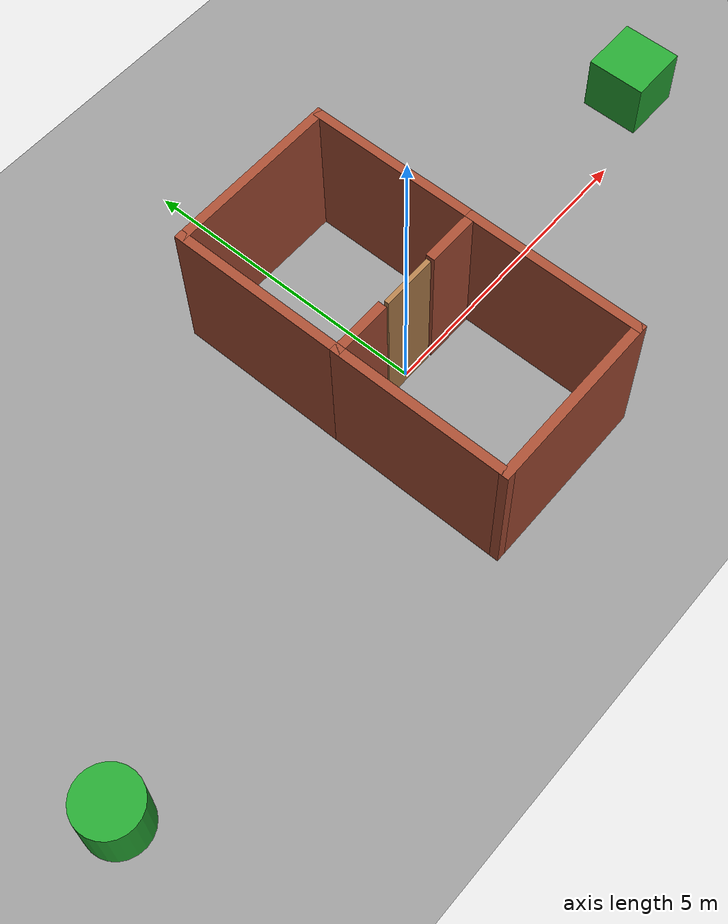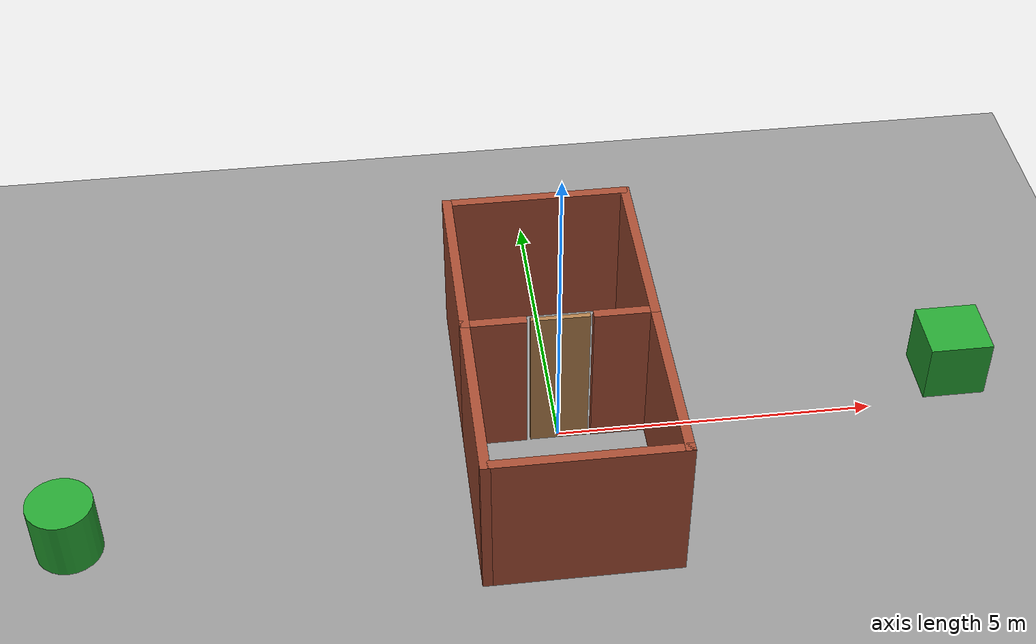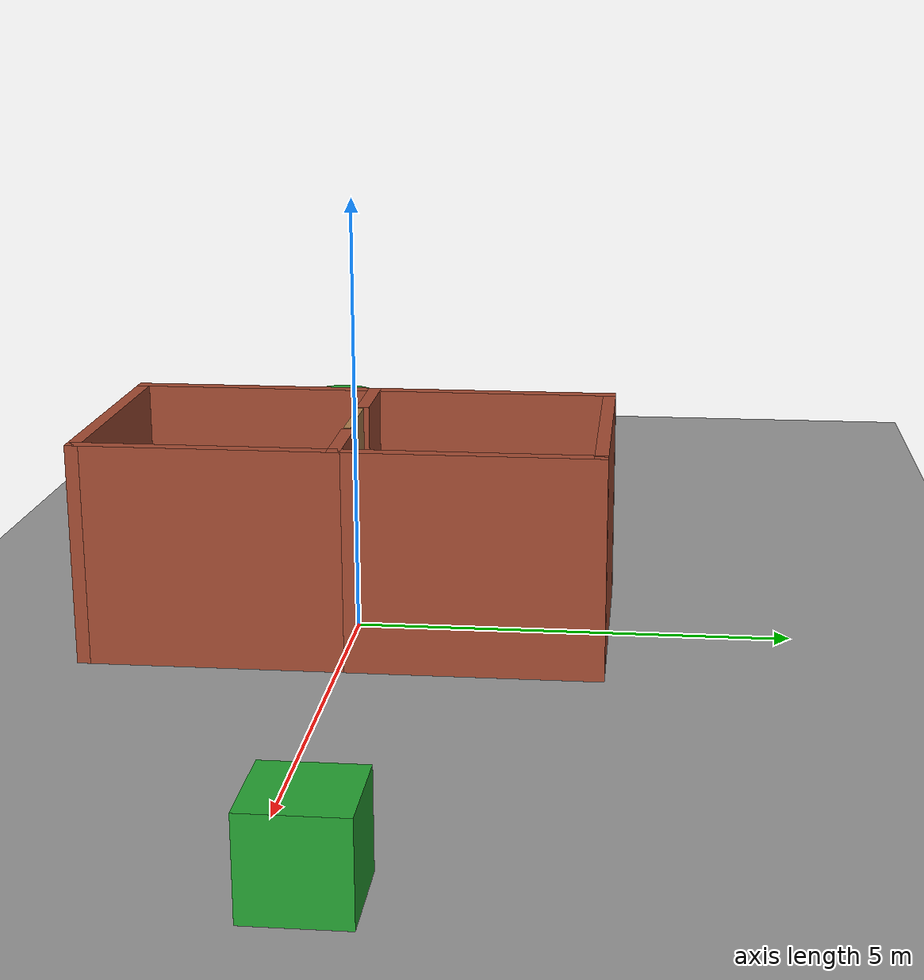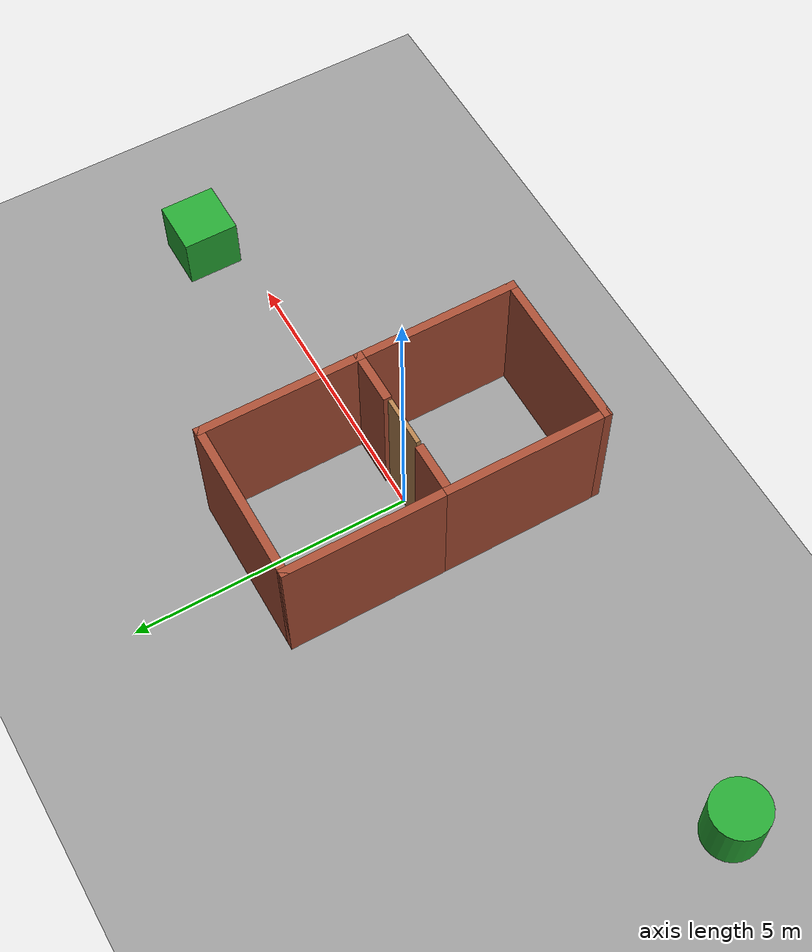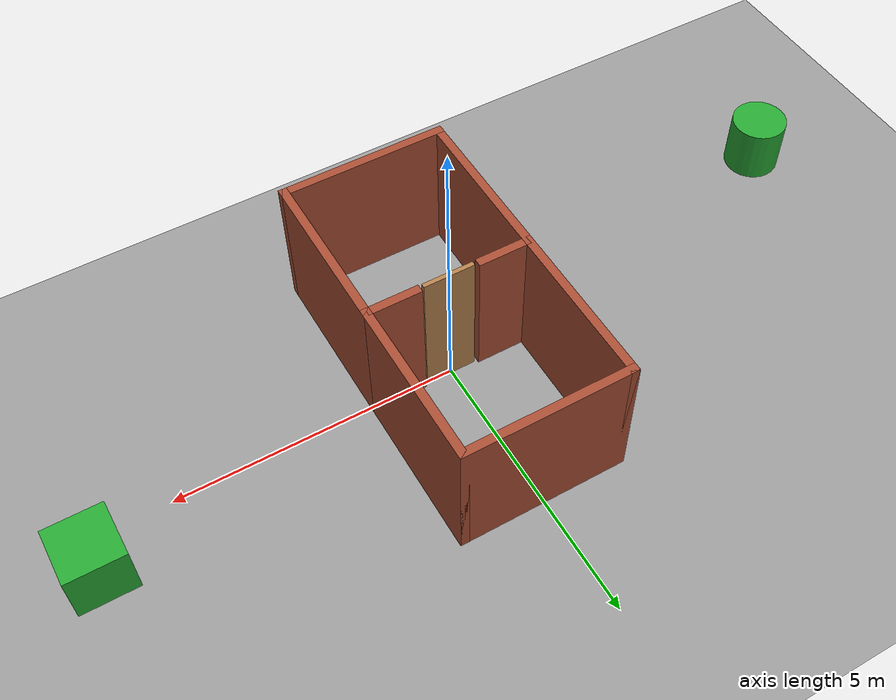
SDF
<sdf version='1.4'>
  <world name='default'>
    <physics type='ode'>
      <max_step_size>0.001</max_step_size>
      <real_time_factor>1</real_time_factor>
      <real_time_update_rate>1000</real_time_update_rate>
      <gravity>0 0 -9.8</gravity>
    </physics>
    <scene>
      <ambient>0.4 0.4 0.4 1</ambient>
      <background>0.7 0.7 0.7 1</background>
      <shadows>1</shadows>
    </scene>
    <spherical_coordinates>
      <surface_model>EARTH_WGS84</surface_model>
      <latitude_deg>0</latitude_deg>
      <longitude_deg>0</longitude_deg>
      <elevation>0</elevation>
      <heading_deg>0</heading_deg>
    </spherical_coordinates>
    <light name='sun' type='directional'>
      <cast_shadows>1</cast_shadows>
      <pose>0 0 10 0 -0 0</pose>
      <diffuse>0.8 0.8 0.8 1</diffuse>
      <specular>0.2 0.2 0.2 1</specular>
      <attenuation>
        <range>1000</range>
        <constant>0.9</constant>
        <linear>0.01</linear>
        <quadratic>0.001</quadratic>
      </attenuation>
      <direction>-0.5 0.1 -0.9</direction>
    </light>
    <model name='rooms'>
      <model name='ground_plane'>
        <static>1</static>
        <link name='link'>
          <collision name='collision'>
            <geometry>
              <plane>
                <normal>0 0 1</normal>
                <size>100 100</size>
              </plane>
            </geometry>
            <surface>
              <friction>
                <ode>
                  <mu>100</mu>
                  <mu2>50</mu2>
                </ode>
              </friction>
              <bounce/>
              <contact>
                <ode/>
              </contact>
            </surface>
            <max_contacts>10</max_contacts>
          </collision>
          <visual name='visual'>
            <cast_shadows>0</cast_shadows>
            <geometry>
              <plane>
                <normal>0 0 1</normal>
                <size>100 100</size>
              </plane>
            </geometry>
            <material>
              <script>
                <uri>file://media/materials/scripts/gazebo.material</uri>
                <name>Gazebo/Grey</name>
              </script>
            </material>
          </visual>
          <velocity_decay>
            <linear>0</linear>
            <angular>0</angular>
          </velocity_decay>
          <self_collide>0</self_collide>
          <kinematic>0</kinematic>
          <gravity>1</gravity>
        </link>
      </model>
      <model name='door'>
        <static>0</static>
        <link name='link'>
          <inertial>
            <mass>1</mass>
            <pose frame=''>0 0 0 0 -0 0</pose>
          </inertial>
          <pose frame=''>0.002741 -0.017964 1.2465 0 -0 0</pose>
          <self_collide>0</self_collide>
          <enable_wind>0</enable_wind>
          <kinematic>0</kinematic>
          <visual name='visual'>
            <pose frame=''>0 0 0 0 -0 0</pose>
            <geometry>
              <box>
                <size>0.9 0.078144 2.51204</size>
              </box>
            </geometry>
            <material>
              <lighting>1</lighting>
              <script>
                <uri>file://media/materials/scripts/gazebo.material</uri>
                <name>Gazebo/WoodFloor</name>
              </script>
              <shader type='pixel'/>
              <emissive>0 0 0 1</emissive>
            </material>
            <transparency>0</transparency>
            <cast_shadows>1</cast_shadows>
          </visual>
          <collision name='collision'>
            <laser_retro>0</laser_retro>
            <max_contacts>10</max_contacts>
            <pose frame=''>0 0 0 0 -0 0</pose>
            <geometry>
              <box>
                <size>0.9 0.078144 2.51204</size>
              </box>
            </geometry>
            <surface>
              <friction>
                <ode>
                  <mu>0.2</mu>
                  <mu2>0.2</mu2>
                  <fdir1>0 0 0</fdir1>
                  <slip1>0</slip1>
                  <slip2>0</slip2>
                </ode>
                <torsional>
                  <coefficient>1</coefficient>
                  <patch_radius>0</patch_radius>
                  <surface_radius>0</surface_radius>
                  <use_patch_radius>1</use_patch_radius>
                  <ode>
                    <slip>0</slip>
                  </ode>
                </torsional>
              </friction>
              <bounce>
                <restitution_coefficient>0</restitution_coefficient>
                <threshold>1e+06</threshold>
              </bounce>
              <contact>
                <collide_without_contact>0</collide_without_contact>
                <collide_without_contact_bitmask>1</collide_without_contact_bitmask>
                <collide_bitmask>1</collide_bitmask>
                <ode>
                  <soft_cfm>0</soft_cfm>
                  <soft_erp>0.2</soft_erp>
                  <kp>1e+13</kp>
                  <kd>1</kd>
                  <max_vel>0.01</max_vel>
                  <min_depth>0</min_depth>
                </ode>
                <bullet>
                  <split_impulse>1</split_impulse>
                  <split_impulse_penetration_threshold>-0.01</split_impulse_penetration_threshold>
                  <soft_cfm>0</soft_cfm>
                  <soft_erp>0.2</soft_erp>
                  <kp>1e+13</kp>
                  <kd>1</kd>
                </bullet>
              </contact>
            </surface>
          </collision>
        </link>
        <plugin name="model_pose_publisher_plugin" filename="libmodel_pose_publisher_plugin.so"/>
      </model>
      <model name='rooms_without_door'>
        <static>1</static>
        <link name='Wall_0'>
          <pose frame=''>-1.425 1.425 -0 0 -0 1.5708</pose>
          <inertial>
            <mass>2250</mass>
            <pose frame=''>0 0 0 0 -0 0</pose>
            <inertia>
              <ixx>1176.09</ixx>
              <ixy>0</ixy>
              <ixz>0</ixz>
              <iyy>2859.38</iyy>
              <iyz>0</iyz>
              <izz>1691.72</izz>
            </inertia>
          </inertial>
          <self_collide>0</self_collide>
          <enable_wind>0</enable_wind>
          <kinematic>0</kinematic>
          <gravity>1</gravity>
          <visual name='Wall_0_Visual'>
            <pose frame=''>0 0 1.25 0 -0 0</pose>
            <geometry>
              <box>
                <size>3 0.15 2.5</size>
              </box>
            </geometry>
            <material>
              <script>
                <uri>file://media/materials/scripts/gazebo.material</uri>
                <name>Gazebo/Bricks</name>
              </script>
              <ambient>1 1 1 1</ambient>
              <shader type='pixel'>
                <normal_map>__default__</normal_map>
              </shader>
              <emissive>0 0 0 1</emissive>
            </material>
            <meta>
              <layer>0</layer>
            </meta>
            <transparency>0</transparency>
            <cast_shadows>1</cast_shadows>
          </visual>
          <collision name='Wall_0_Collision'>
            <laser_retro>0</laser_retro>
            <max_contacts>10</max_contacts>
            <pose frame=''>0 0 1.25 0 -0 0</pose>
            <geometry>
              <box>
                <size>3 0.15 2.5</size>
              </box>
            </geometry>
            <surface>
              <friction>
                <ode>
                  <mu>1</mu>
                  <mu2>1</mu2>
                  <fdir1>0 0 0</fdir1>
                  <slip1>0</slip1>
                  <slip2>0</slip2>
                </ode>
                <torsional>
                  <coefficient>1</coefficient>
                  <patch_radius>0</patch_radius>
                  <surface_radius>0</surface_radius>
                  <use_patch_radius>1</use_patch_radius>
                  <ode>
                    <slip>0</slip>
                  </ode>
                </torsional>
              </friction>
              <bounce>
                <restitution_coefficient>0</restitution_coefficient>
                <threshold>1e+06</threshold>
              </bounce>
              <contact>
                <collide_without_contact>0</collide_without_contact>
                <collide_without_contact_bitmask>1</collide_without_contact_bitmask>
                <collide_bitmask>1</collide_bitmask>
                <ode>
                  <soft_cfm>0</soft_cfm>
                  <soft_erp>0.2</soft_erp>
                  <kp>1e+13</kp>
                  <kd>1</kd>
                  <max_vel>0.01</max_vel>
                  <min_depth>0</min_depth>
                </ode>
                <bullet>
                  <split_impulse>1</split_impulse>
                  <split_impulse_penetration_threshold>-0.01</split_impulse_penetration_threshold>
                  <soft_cfm>0</soft_cfm>
                  <soft_erp>0.2</soft_erp>
                  <kp>1e+13</kp>
                  <kd>1</kd>
                </bullet>
              </contact>
            </surface>
          </collision>
        </link>
        <link name='Wall_1'>
          <pose frame=''>0 2.85 -0 0 -0 0</pose>
          <inertial>
            <mass>2250</mass>
            <pose frame=''>0 0 0 0 -0 0</pose>
            <inertia>
              <ixx>1176.09</ixx>
              <ixy>0</ixy>
              <ixz>0</ixz>
              <iyy>2859.38</iyy>
              <iyz>0</iyz>
              <izz>1691.72</izz>
            </inertia>
          </inertial>
          <self_collide>0</self_collide>
          <enable_wind>0</enable_wind>
          <kinematic>0</kinematic>
          <gravity>1</gravity>
          <visual name='Wall_1_Visual'>
            <pose frame=''>0 0 1.25 0 -0 0</pose>
            <geometry>
              <box>
                <size>3 0.15 2.5</size>
              </box>
            </geometry>
            <material>
              <script>
                <uri>file://media/materials/scripts/gazebo.material</uri>
                <name>Gazebo/Bricks</name>
              </script>
              <ambient>1 1 1 1</ambient>
              <shader type='pixel'>
                <normal_map>__default__</normal_map>
              </shader>
              <emissive>0 0 0 1</emissive>
            </material>
            <meta>
              <layer>0</layer>
            </meta>
            <transparency>0</transparency>
            <cast_shadows>1</cast_shadows>
          </visual>
          <collision name='Wall_1_Collision'>
            <laser_retro>0</laser_retro>
            <max_contacts>10</max_contacts>
            <pose frame=''>0 0 1.25 0 -0 0</pose>
            <geometry>
              <box>
                <size>3 0.15 2.5</size>
              </box>
            </geometry>
            <surface>
              <friction>
                <ode>
                  <mu>1</mu>
                  <mu2>1</mu2>
                  <fdir1>0 0 0</fdir1>
                  <slip1>0</slip1>
                  <slip2>0</slip2>
                </ode>
                <torsional>
                  <coefficient>1</coefficient>
                  <patch_radius>0</patch_radius>
                  <surface_radius>0</surface_radius>
                  <use_patch_radius>1</use_patch_radius>
                  <ode>
                    <slip>0</slip>
                  </ode>
                </torsional>
              </friction>
              <bounce>
                <restitution_coefficient>0</restitution_coefficient>
                <threshold>1e+06</threshold>
              </bounce>
              <contact>
                <collide_without_contact>0</collide_without_contact>
                <collide_without_contact_bitmask>1</collide_without_contact_bitmask>
                <collide_bitmask>1</collide_bitmask>
                <ode>
                  <soft_cfm>0</soft_cfm>
                  <soft_erp>0.2</soft_erp>
                  <kp>1e+13</kp>
                  <kd>1</kd>
                  <max_vel>0.01</max_vel>
                  <min_depth>0</min_depth>
                </ode>
                <bullet>
                  <split_impulse>1</split_impulse>
                  <split_impulse_penetration_threshold>-0.01</split_impulse_penetration_threshold>
                  <soft_cfm>0</soft_cfm>
                  <soft_erp>0.2</soft_erp>
                  <kp>1e+13</kp>
                  <kd>1</kd>
                </bullet>
              </contact>
            </surface>
          </collision>
        </link>
        <link name='Wall_2'>
          <pose frame=''>1.425 1.425 -0 0 0 -1.5708</pose>
          <inertial>
            <mass>2250</mass>
            <pose frame=''>0 0 0 0 -0 0</pose>
            <inertia>
              <ixx>1176.09</ixx>
              <ixy>0</ixy>
              <ixz>0</ixz>
              <iyy>2859.38</iyy>
              <iyz>0</iyz>
              <izz>1691.72</izz>
            </inertia>
          </inertial>
          <self_collide>0</self_collide>
          <enable_wind>0</enable_wind>
          <kinematic>0</kinematic>
          <gravity>1</gravity>
          <visual name='Wall_2_Visual'>
            <pose frame=''>0 0 1.25 0 -0 0</pose>
            <geometry>
              <box>
                <size>3 0.15 2.5</size>
              </box>
            </geometry>
            <material>
              <script>
                <uri>file://media/materials/scripts/gazebo.material</uri>
                <name>Gazebo/Bricks</name>
              </script>
              <ambient>1 1 1 1</ambient>
              <shader type='pixel'>
                <normal_map>__default__</normal_map>
              </shader>
              <emissive>0 0 0 1</emissive>
            </material>
            <meta>
              <layer>0</layer>
            </meta>
            <transparency>0</transparency>
            <cast_shadows>1</cast_shadows>
          </visual>
          <collision name='Wall_2_Collision'>
            <laser_retro>0</laser_retro>
            <max_contacts>10</max_contacts>
            <pose frame=''>0 0 1.25 0 -0 0</pose>
            <geometry>
              <box>
                <size>3 0.15 2.5</size>
              </box>
            </geometry>
            <surface>
              <friction>
                <ode>
                  <mu>1</mu>
                  <mu2>1</mu2>
                  <fdir1>0 0 0</fdir1>
                  <slip1>0</slip1>
                  <slip2>0</slip2>
                </ode>
                <torsional>
                  <coefficient>1</coefficient>
                  <patch_radius>0</patch_radius>
                  <surface_radius>0</surface_radius>
                  <use_patch_radius>1</use_patch_radius>
                  <ode>
                    <slip>0</slip>
                  </ode>
                </torsional>
              </friction>
              <bounce>
                <restitution_coefficient>0</restitution_coefficient>
                <threshold>1e+06</threshold>
              </bounce>
              <contact>
                <collide_without_contact>0</collide_without_contact>
                <collide_without_contact_bitmask>1</collide_without_contact_bitmask>
                <collide_bitmask>1</collide_bitmask>
                <ode>
                  <soft_cfm>0</soft_cfm>
                  <soft_erp>0.2</soft_erp>
                  <kp>1e+13</kp>
                  <kd>1</kd>
                  <max_vel>0.01</max_vel>
                  <min_depth>0</min_depth>
                </ode>
                <bullet>
                  <split_impulse>1</split_impulse>
                  <split_impulse_penetration_threshold>-0.01</split_impulse_penetration_threshold>
                  <soft_cfm>0</soft_cfm>
                  <soft_erp>0.2</soft_erp>
                  <kp>1e+13</kp>
                  <kd>1</kd>
                </bullet>
              </contact>
            </surface>
          </collision>
        </link>
        <link name='Wall_3'>
          <pose frame=''>1.425 -1.425 0 0 0 -1.5708</pose>
          <inertial>
            <mass>2250</mass>
            <pose frame=''>0 0 0 0 -0 0</pose>
            <inertia>
              <ixx>1176.09</ixx>
              <ixy>0</ixy>
              <ixz>0</ixz>
              <iyy>2859.38</iyy>
              <iyz>0</iyz>
              <izz>1691.72</izz>
            </inertia>
          </inertial>
          <self_collide>0</self_collide>
          <enable_wind>0</enable_wind>
          <kinematic>0</kinematic>
          <gravity>1</gravity>
          <visual name='Wall_3_Visual'>
            <pose frame=''>0 0 1.25 0 -0 0</pose>
            <geometry>
              <box>
                <size>3 0.15 2.5</size>
              </box>
            </geometry>
            <material>
              <script>
                <uri>file://media/materials/scripts/gazebo.material</uri>
                <name>Gazebo/Bricks</name>
              </script>
              <ambient>1 1 1 1</ambient>
              <shader type='pixel'>
                <normal_map>__default__</normal_map>
              </shader>
              <emissive>0 0 0 1</emissive>
            </material>
            <meta>
              <layer>0</layer>
            </meta>
            <transparency>0</transparency>
            <cast_shadows>1</cast_shadows>
          </visual>
          <collision name='Wall_3_Collision'>
            <laser_retro>0</laser_retro>
            <max_contacts>10</max_contacts>
            <pose frame=''>0 0 1.25 0 -0 0</pose>
            <geometry>
              <box>
                <size>3 0.15 2.5</size>
              </box>
            </geometry>
            <surface>
              <friction>
                <ode>
                  <mu>1</mu>
                  <mu2>1</mu2>
                  <fdir1>0 0 0</fdir1>
                  <slip1>0</slip1>
                  <slip2>0</slip2>
                </ode>
                <torsional>
                  <coefficient>1</coefficient>
                  <patch_radius>0</patch_radius>
                  <surface_radius>0</surface_radius>
                  <use_patch_radius>1</use_patch_radius>
                  <ode>
                    <slip>0</slip>
                  </ode>
                </torsional>
              </friction>
              <bounce>
                <restitution_coefficient>0</restitution_coefficient>
                <threshold>1e+06</threshold>
              </bounce>
              <contact>
                <collide_without_contact>0</collide_without_contact>
                <collide_without_contact_bitmask>1</collide_without_contact_bitmask>
                <collide_bitmask>1</collide_bitmask>
                <ode>
                  <soft_cfm>0</soft_cfm>
                  <soft_erp>0.2</soft_erp>
                  <kp>1e+13</kp>
                  <kd>1</kd>
                  <max_vel>0.01</max_vel>
                  <min_depth>0</min_depth>
                </ode>
                <bullet>
                  <split_impulse>1</split_impulse>
                  <split_impulse_penetration_threshold>-0.01</split_impulse_penetration_threshold>
                  <soft_cfm>0</soft_cfm>
                  <soft_erp>0.2</soft_erp>
                  <kp>1e+13</kp>
                  <kd>1</kd>
                </bullet>
              </contact>
            </surface>
          </collision>
        </link>
        <link name='Wall_4'>
          <pose frame=''>0 -2.85 0 0 -0 3.14159</pose>
          <inertial>
            <mass>2250</mass>
            <pose frame=''>0 0 0 0 -0 0</pose>
            <inertia>
              <ixx>1176.09</ixx>
              <ixy>0</ixy>
              <ixz>0</ixz>
              <iyy>2859.38</iyy>
              <iyz>0</iyz>
              <izz>1691.72</izz>
            </inertia>
          </inertial>
          <self_collide>0</self_collide>
          <enable_wind>0</enable_wind>
          <kinematic>0</kinematic>
          <gravity>1</gravity>
          <visual name='Wall_4_Visual'>
            <pose frame=''>0 0 1.25 0 -0 0</pose>
            <geometry>
              <box>
                <size>3 0.15 2.5</size>
              </box>
            </geometry>
            <material>
              <script>
                <uri>file://media/materials/scripts/gazebo.material</uri>
                <name>Gazebo/Bricks</name>
              </script>
              <ambient>1 1 1 1</ambient>
              <shader type='pixel'>
                <normal_map>__default__</normal_map>
              </shader>
              <emissive>0 0 0 1</emissive>
            </material>
            <meta>
              <layer>0</layer>
            </meta>
            <transparency>0</transparency>
            <cast_shadows>1</cast_shadows>
          </visual>
          <collision name='Wall_4_Collision'>
            <laser_retro>0</laser_retro>
            <max_contacts>10</max_contacts>
            <pose frame=''>0 0 1.25 0 -0 0</pose>
            <geometry>
              <box>
                <size>3 0.15 2.5</size>
              </box>
            </geometry>
            <surface>
              <friction>
                <ode>
                  <mu>1</mu>
                  <mu2>1</mu2>
                  <fdir1>0 0 0</fdir1>
                  <slip1>0</slip1>
                  <slip2>0</slip2>
                </ode>
                <torsional>
                  <coefficient>1</coefficient>
                  <patch_radius>0</patch_radius>
                  <surface_radius>0</surface_radius>
                  <use_patch_radius>1</use_patch_radius>
                  <ode>
                    <slip>0</slip>
                  </ode>
                </torsional>
              </friction>
              <bounce>
                <restitution_coefficient>0</restitution_coefficient>
                <threshold>1e+06</threshold>
              </bounce>
              <contact>
                <collide_without_contact>0</collide_without_contact>
                <collide_without_contact_bitmask>1</collide_without_contact_bitmask>
                <collide_bitmask>1</collide_bitmask>
                <ode>
                  <soft_cfm>0</soft_cfm>
                  <soft_erp>0.2</soft_erp>
                  <kp>1e+13</kp>
                  <kd>1</kd>
                  <max_vel>0.01</max_vel>
                  <min_depth>0</min_depth>
                </ode>
                <bullet>
                  <split_impulse>1</split_impulse>
                  <split_impulse_penetration_threshold>-0.01</split_impulse_penetration_threshold>
                  <soft_cfm>0</soft_cfm>
                  <soft_erp>0.2</soft_erp>
                  <kp>1e+13</kp>
                  <kd>1</kd>
                </bullet>
              </contact>
            </surface>
          </collision>
        </link>
        <link name='Wall_5'>
          <pose frame=''>-1.425 -1.425 0 0 -0 1.5708</pose>
          <inertial>
            <mass>2250</mass>
            <pose frame=''>0 0 0 0 -0 0</pose>
            <inertia>
              <ixx>1176.09</ixx>
              <ixy>0</ixy>
              <ixz>0</ixz>
              <iyy>2859.38</iyy>
              <iyz>0</iyz>
              <izz>1691.72</izz>
            </inertia>
          </inertial>
          <self_collide>0</self_collide>
          <enable_wind>0</enable_wind>
          <kinematic>0</kinematic>
          <gravity>1</gravity>
          <visual name='Wall_5_Visual'>
            <pose frame=''>0 0 1.25 0 -0 0</pose>
            <geometry>
              <box>
                <size>3 0.15 2.5</size>
              </box>
            </geometry>
            <material>
              <script>
                <uri>file://media/materials/scripts/gazebo.material</uri>
                <name>Gazebo/Bricks</name>
              </script>
              <ambient>1 1 1 1</ambient>
              <shader type='pixel'>
                <normal_map>__default__</normal_map>
              </shader>
              <emissive>0 0 0 1</emissive>
              <diffuse>0.7 0.7 0.7 1</diffuse>
              <specular>0.01 0.01 0.01 1</specular>
            </material>
            <meta>
              <layer>0</layer>
            </meta>
            <transparency>0</transparency>
            <cast_shadows>1</cast_shadows>
          </visual>
          <collision name='Wall_5_Collision'>
            <laser_retro>0</laser_retro>
            <max_contacts>10</max_contacts>
            <pose frame=''>0 0 1.25 0 -0 0</pose>
            <geometry>
              <box>
                <size>3 0.15 2.5</size>
              </box>
            </geometry>
            <surface>
              <friction>
                <ode>
                  <mu>1</mu>
                  <mu2>1</mu2>
                  <fdir1>0 0 0</fdir1>
                  <slip1>0</slip1>
                  <slip2>0</slip2>
                </ode>
                <torsional>
                  <coefficient>1</coefficient>
                  <patch_radius>0</patch_radius>
                  <surface_radius>0</surface_radius>
                  <use_patch_radius>1</use_patch_radius>
                  <ode>
                    <slip>0</slip>
                  </ode>
                </torsional>
              </friction>
              <bounce>
                <restitution_coefficient>0</restitution_coefficient>
                <threshold>1e+06</threshold>
              </bounce>
              <contact>
                <collide_without_contact>0</collide_without_contact>
                <collide_without_contact_bitmask>1</collide_without_contact_bitmask>
                <collide_bitmask>1</collide_bitmask>
                <ode>
                  <soft_cfm>0</soft_cfm>
                  <soft_erp>0.2</soft_erp>
                  <kp>1e+13</kp>
                  <kd>1</kd>
                  <max_vel>0.01</max_vel>
                  <min_depth>0</min_depth>
                </ode>
                <bullet>
                  <split_impulse>1</split_impulse>
                  <split_impulse_penetration_threshold>-0.01</split_impulse_penetration_threshold>
                  <soft_cfm>0</soft_cfm>
                  <soft_erp>0.2</soft_erp>
                  <kp>1e+13</kp>
                  <kd>1</kd>
                </bullet>
              </contact>
            </surface>
          </collision>
        </link>
        <link name='Wall_6'>
          <pose frame=''>-1 0 0 0 -0 0</pose>
          <inertial>
            <mass>750</mass>
            <pose frame=''>0 0 0 0 -0 0</pose>
            <inertia>
              <ixx>392.031</ixx>
              <ixy>0</ixy>
              <ixz>0</ixz>
              <iyy>453.125</iyy>
              <iyz>0</iyz>
              <izz>63.9062</izz>
            </inertia>
          </inertial>
          <self_collide>0</self_collide>
          <enable_wind>0</enable_wind>
          <kinematic>0</kinematic>
          <gravity>1</gravity>
          <visual name='Wall_6_Visual'>
            <pose frame=''>0 0 1.25 0 -0 0</pose>
            <geometry>
              <box>
                <size>1 0.15 2.5</size>
              </box>
            </geometry>
            <material>
              <script>
                <uri>file://media/materials/scripts/gazebo.material</uri>
                <name>Gazebo/Bricks</name>
              </script>
              <ambient>1 1 1 1</ambient>
              <shader type='pixel'>
                <normal_map>__default__</normal_map>
              </shader>
              <emissive>0 0 0 1</emissive>
            </material>
            <meta>
              <layer>0</layer>
            </meta>
            <transparency>0</transparency>
            <cast_shadows>1</cast_shadows>
          </visual>
          <collision name='Wall_6_Collision'>
            <laser_retro>0</laser_retro>
            <max_contacts>10</max_contacts>
            <pose frame=''>0 0 1.25 0 -0 0</pose>
            <geometry>
              <box>
                <size>1 0.15 2.5</size>
              </box>
            </geometry>
            <surface>
              <friction>
                <ode>
                  <mu>1</mu>
                  <mu2>1</mu2>
                  <fdir1>0 0 0</fdir1>
                  <slip1>0</slip1>
                  <slip2>0</slip2>
                </ode>
                <torsional>
                  <coefficient>1</coefficient>
                  <patch_radius>0</patch_radius>
                  <surface_radius>0</surface_radius>
                  <use_patch_radius>1</use_patch_radius>
                  <ode>
                    <slip>0</slip>
                  </ode>
                </torsional>
              </friction>
              <bounce>
                <restitution_coefficient>0</restitution_coefficient>
                <threshold>1e+06</threshold>
              </bounce>
              <contact>
                <collide_without_contact>0</collide_without_contact>
                <collide_without_contact_bitmask>1</collide_without_contact_bitmask>
                <collide_bitmask>1</collide_bitmask>
                <ode>
                  <soft_cfm>0</soft_cfm>
                  <soft_erp>0.2</soft_erp>
                  <kp>1e+13</kp>
                  <kd>1</kd>
                  <max_vel>0.01</max_vel>
                  <min_depth>0</min_depth>
                </ode>
                <bullet>
                  <split_impulse>1</split_impulse>
                  <split_impulse_penetration_threshold>-0.01</split_impulse_penetration_threshold>
                  <soft_cfm>0</soft_cfm>
                  <soft_erp>0.2</soft_erp>
                  <kp>1e+13</kp>
                  <kd>1</kd>
                </bullet>
              </contact>
            </surface>
          </collision>
        </link>
        <link name='Wall_8'>
          <pose frame=''>1 -0 0 0 -0 3.14159</pose>
          <inertial>
            <mass>750</mass>
            <pose frame=''>0 0 0 0 -0 0</pose>
            <inertia>
              <ixx>392.031</ixx>
              <ixy>0</ixy>
              <ixz>0</ixz>
              <iyy>453.125</iyy>
              <iyz>0</iyz>
              <izz>63.9062</izz>
            </inertia>
          </inertial>
          <self_collide>0</self_collide>
          <enable_wind>0</enable_wind>
          <kinematic>0</kinematic>
          <gravity>1</gravity>
          <visual name='Wall_8_Visual'>
            <pose frame=''>0 0 1.25 0 -0 0</pose>
            <geometry>
              <box>
                <size>1 0.15 2.5</size>
              </box>
            </geometry>
            <material>
              <script>
                <uri>file://media/materials/scripts/gazebo.material</uri>
                <name>Gazebo/Bricks</name>
              </script>
              <ambient>1 1 1 1</ambient>
              <shader type='pixel'>
                <normal_map>__default__</normal_map>
              </shader>
              <diffuse>0.7 0.7 0.7 1</diffuse>
              <specular>0.01 0.01 0.01 1</specular>
              <emissive>0 0 0 1</emissive>
            </material>
            <meta>
              <layer>0</layer>
            </meta>
            <transparency>0</transparency>
            <cast_shadows>1</cast_shadows>
          </visual>
          <collision name='Wall_8_Collision'>
            <laser_retro>0</laser_retro>
            <max_contacts>10</max_contacts>
            <pose frame=''>0 0 1.25 0 -0 0</pose>
            <geometry>
              <box>
                <size>1 0.15 2.5</size>
              </box>
            </geometry>
            <surface>
              <friction>
                <ode>
                  <mu>1</mu>
                  <mu2>1</mu2>
                  <fdir1>0 0 0</fdir1>
                  <slip1>0</slip1>
                  <slip2>0</slip2>
                </ode>
                <torsional>
                  <coefficient>1</coefficient>
                  <patch_radius>0</patch_radius>
                  <surface_radius>0</surface_radius>
                  <use_patch_radius>1</use_patch_radius>
                  <ode>
                    <slip>0</slip>
                  </ode>
                </torsional>
              </friction>
              <bounce>
                <restitution_coefficient>0</restitution_coefficient>
                <threshold>1e+06</threshold>
              </bounce>
              <contact>
                <collide_without_contact>0</collide_without_contact>
                <collide_without_contact_bitmask>1</collide_without_contact_bitmask>
                <collide_bitmask>1</collide_bitmask>
                <ode>
                  <soft_cfm>0</soft_cfm>
                  <soft_erp>0.2</soft_erp>
                  <kp>1e+13</kp>
                  <kd>1</kd>
                  <max_vel>0.01</max_vel>
                  <min_depth>0</min_depth>
                </ode>
                <bullet>
                  <split_impulse>1</split_impulse>
                  <split_impulse_penetration_threshold>-0.01</split_impulse_penetration_threshold>
                  <soft_cfm>0</soft_cfm>
                  <soft_erp>0.2</soft_erp>
                  <kp>1e+13</kp>
                  <kd>1</kd>
                </bullet>
              </contact>
            </surface>
          </collision>
        </link>
        <allow_auto_disable>1</allow_auto_disable>
      </model>
      <joint name='door_hinge' type='revolute'>
        <parent>ground_plane::link</parent>
        <child>door::link</child>
        <pose frame=''>-0.5 0 0 0 -0 0</pose>
        <axis>
          <xyz>0 0 1</xyz>
          <use_parent_model_frame>true</use_parent_model_frame>
          <limit>
            <lower>-3.14</lower>
            <upper>3.14</upper>
          </limit>
          <dynamics>
            <spring_reference>0</spring_reference>
            <spring_stiffness>0</spring_stiffness>
            <damping>0</damping>
            <friction>0</friction>
          </dynamics>
        </axis>
        <physics>
          <ode>
            <limit>
              <cfm>0</cfm>
              <erp>0.2</erp>
            </limit>
            <suspension>
              <cfm>0</cfm>
              <erp>0.2</erp>
            </suspension>
          </ode>
        </physics>
      </joint>
    </model>
    <model name='unit_box'>
      <pose frame=''>6.42455 0.596341 0.5 0 -0 0</pose>
      <link name='link'>
        <inertial>
          <mass>5</mass>
          <inertia>
            <ixx>0.166667</ixx>
            <ixy>0</ixy>
            <ixz>0</ixz>
            <iyy>0.166667</iyy>
            <iyz>0</iyz>
            <izz>0.166667</izz>
          </inertia>
          <pose frame=''>0 0 0 0 -0 0</pose>
        </inertial>
        <collision name='collision'>
          <geometry>
            <box>
              <size>1 1 0.5</size>
            </box>
          </geometry>
          <max_contacts>10</max_contacts>
          <surface>
              <friction>
                <ode>
                  <mu>0.7</mu>
                  <mu2>0.7</mu2>
                </ode>
              </friction>
              <bounce/>
              <contact>
                <ode/>
              </contact>
            </surface>
        </collision>
        <visual name='visual'>
          <geometry>
            <box>
              <size>1 1 1</size>
            </box>
          </geometry>
          <material>
            <script>
              <name>Gazebo/GreenGlow</name>
              <uri>file://media/materials/scripts/gazebo.material</uri>
            </script>
          </material>
        </visual>
        <self_collide>0</self_collide>
        <enable_wind>0</enable_wind>
        <kinematic>0</kinematic>
      </link>
      <plugin name="model_pose_publisher_plugin" filename="libmodel_pose_publisher_plugin.so"/>
    </model>
    <model name='unit_cylinder'>
      <pose frame=''>-7.49102 -1.46819 0.5 0 -0 0</pose>
      <link name='link'>
        <inertial>
          <mass>1</mass>
          <inertia>
            <ixx>0.145833</ixx>
            <ixy>0</ixy>
            <ixz>0</ixz>
            <iyy>0.145833</iyy>
            <iyz>0</iyz>
            <izz>0.125</izz>
          </inertia>
          <pose frame=''>0 0 0 0 -0 0</pose>
        </inertial>
        <collision name='collision'>
          <geometry>
            <cylinder>
              <radius>0.5</radius>
              <length>1</length>
            </cylinder>
          </geometry>
          <max_contacts>10</max_contacts>
          <surface>
            <contact>
              <ode/>
            </contact>
            <bounce/>
            <friction>
              <torsional>
                <ode/>
              </torsional>
              <ode/>
            </friction>
          </surface>
        </collision>
        <visual name='visual'>
          <geometry>
            <cylinder>
              <radius>0.5</radius>
              <length>1</length>
            </cylinder>
          </geometry>
          <material>
            <script>
              <name>Gazebo/GreenGlow</name>
              <uri>file://media/materials/scripts/gazebo.material</uri>
            </script>
          </material>
        </visual>
        <self_collide>0</self_collide>
        <enable_wind>0</enable_wind>
        <kinematic>0</kinematic>
      </link>
      <plugin name="model_pose_publisher_plugin" filename="libmodel_pose_publisher_plugin.so"/>
    </model>
    <gui fullscreen='0'>
      <camera name='user_camera'>
        <pose>0.59881 -4.06701 27.182 -2.2526e-16 1.3218 2.2322</pose>
        <view_controller>orbit</view_controller>
      </camera>
    </gui>
  </world>
</sdf>
